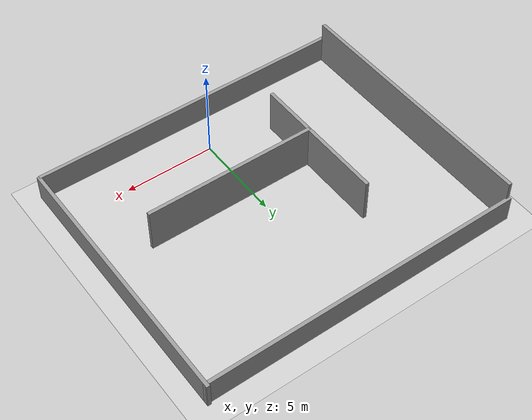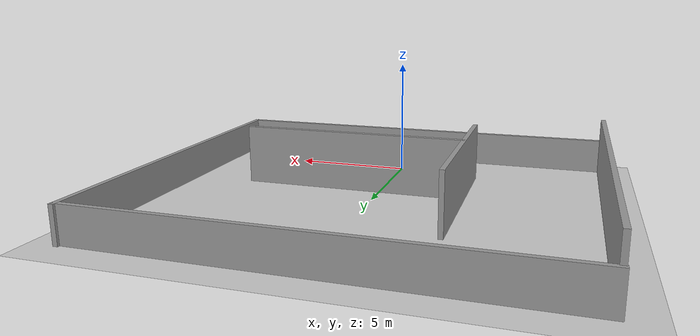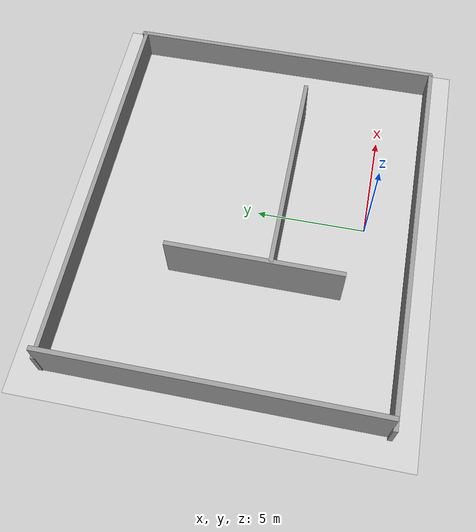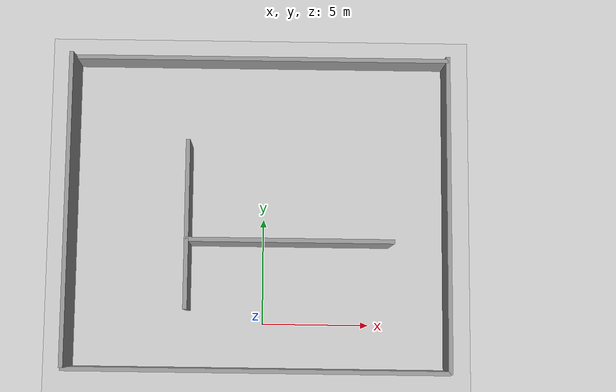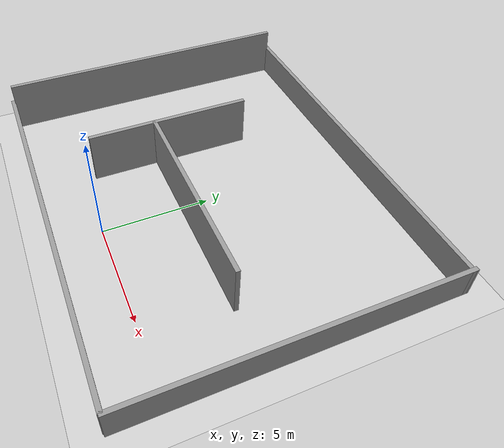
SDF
<?xml version="1.0" ?>
<sdf version="1.4">
  <world name="default">
    <include>
      <uri>model://ground_plane</uri>
    </include>
    <include>
      <uri>model://sun</uri>
    </include>
 <model name='IAEA_map'>
    <link name='Wall_0'>
      <collision name='Wall_0_Collision'>
        <geometry>
          <box>
            <size>18 0.2 1.5</size>
          </box>
        </geometry>
        <pose>0 0 0.75 0 -0 0</pose>
      </collision>
      <visual name='Wall_0_Visual'>
        <pose>0 0 0.75 0 -0 0</pose>
        <geometry>
          <box>
            <size>18 0.2 1.5</size>
          </box>
        </geometry>
        <material>
          <script>
            <uri>file://media/materials/scripts/gazebo.material</uri>
            <name>Gazebo/Grey</name>
          </script>
        </material>
      </visual>
      <velocity_decay>
        <linear>0</linear>
        <angular>0</angular>
      </velocity_decay>
      <pose>-0.314004 -2.14957 0 0 -0 0</pose>
    </link>
    <link name='Wall_11'>
      <collision name='Wall_11_Collision'>
        <geometry>
          <box>
            <size>7.82992 0.2 2.5</size>
          </box>
        </geometry>
        <pose>0 0 1.25 0 -0 0</pose>
      </collision>
      <visual name='Wall_11_Visual'>
        <pose>0 0 1.25 0 -0 0</pose>
        <geometry>
          <box>
            <size>7.82992 0.2 2.5</size>
          </box>
        </geometry>
        <material>
          <script>
            <uri>file://media/materials/scripts/gazebo.material</uri>
            <name>Gazebo/Grey</name>
          </script>
        </material>
      </visual>
      <velocity_decay>
        <linear>0</linear>
        <angular>0</angular>
      </velocity_decay>
      <pose>-3.54498 4.53843 0 0 0 -1.5708</pose>
    </link>
    <link name='Wall_16'>
      <collision name='Wall_16_Collision'>
        <geometry>
          <box>
            <size>9.57292 0.2 2.5</size>
          </box>
        </geometry>
        <pose>0 0 1.25 0 -0 0</pose>
      </collision>
      <visual name='Wall_16_Visual'>
        <pose>0 0 1.25 0 -0 0</pose>
        <geometry>
          <box>
            <size>9.57292 0.2 2.5</size>
          </box>
        </geometry>
        <material>
          <script>
            <uri>file://media/materials/scripts/gazebo.material</uri>
            <name>Gazebo/Grey</name>
          </script>
        </material>
      </visual>
      <velocity_decay>
        <linear>0</linear>
        <angular>0</angular>
      </velocity_decay>
      <pose>1.21124 3.81538 0 0 -0 0</pose>
    </link>
    <link name='Wall_5'>
      <collision name='Wall_5_Collision'>
        <geometry>
          <box>
            <size>15 0.2 1.5</size>
          </box>
        </geometry>
        <pose>0 0 0.75 0 -0 0</pose>
      </collision>
      <visual name='Wall_5_Visual'>
        <pose>0 0 0.75 0 -0 0</pose>
        <geometry>
          <box>
            <size>15 0.2 1.5</size>
          </box>
        </geometry>
        <material>
          <script>
            <uri>file://media/materials/scripts/gazebo.material</uri>
            <name>Gazebo/Grey</name>
          </script>
        </material>
      </visual>
      <velocity_decay>
        <linear>0</linear>
        <angular>0</angular>
      </velocity_decay>
      <pose>8.69081 5.28551 0 0 -0 1.5708</pose>
    </link>
    <link name='Wall_7'>
      <collision name='Wall_7_Collision'>
        <geometry>
          <box>
            <size>18 0.2 1.5</size>
          </box>
        </geometry>
        <pose>0 0 0.75 0 -0 0</pose>
      </collision>
      <visual name='Wall_7_Visual'>
        <pose>0 0 0.75 0 -0 0</pose>
        <geometry>
          <box>
            <size>18 0.2 1.5</size>
          </box>
        </geometry>
        <material>
          <script>
            <uri>file://media/materials/scripts/gazebo.material</uri>
            <name>Gazebo/Grey</name>
          </script>
        </material>
      </visual>
      <velocity_decay>
        <linear>0</linear>
        <angular>0</angular>
      </velocity_decay>
      <pose>-0.209187 12.5871 0 0 -0 3.14159</pose>
    </link>
    <link name='Wall_9'>
      <collision name='Wall_9_Collision'>
        <geometry>
          <box>
            <size>14.6224 0.2 2.5</size>
          </box>
        </geometry>
        <pose>0 0 1.25 0 -0 0</pose>
      </collision>
      <visual name='Wall_9_Visual'>
        <pose>0 0 1.25 0 -0 0</pose>
        <geometry>
          <box>
            <size>14.6224 0.2 2.5</size>
          </box>
        </geometry>
        <material>
          <script>
            <uri>file://media/materials/scripts/gazebo.material</uri>
            <name>Gazebo/Grey</name>
          </script>
        </material>
      </visual>
      <velocity_decay>
        <linear>0</linear>
        <angular>0</angular>
      </velocity_decay>
      <pose>-9.08132 5.23629 0 0 0 -1.5708</pose>
    </link>
    <static>1</static>
  </model>

  </world>
</sdf>
